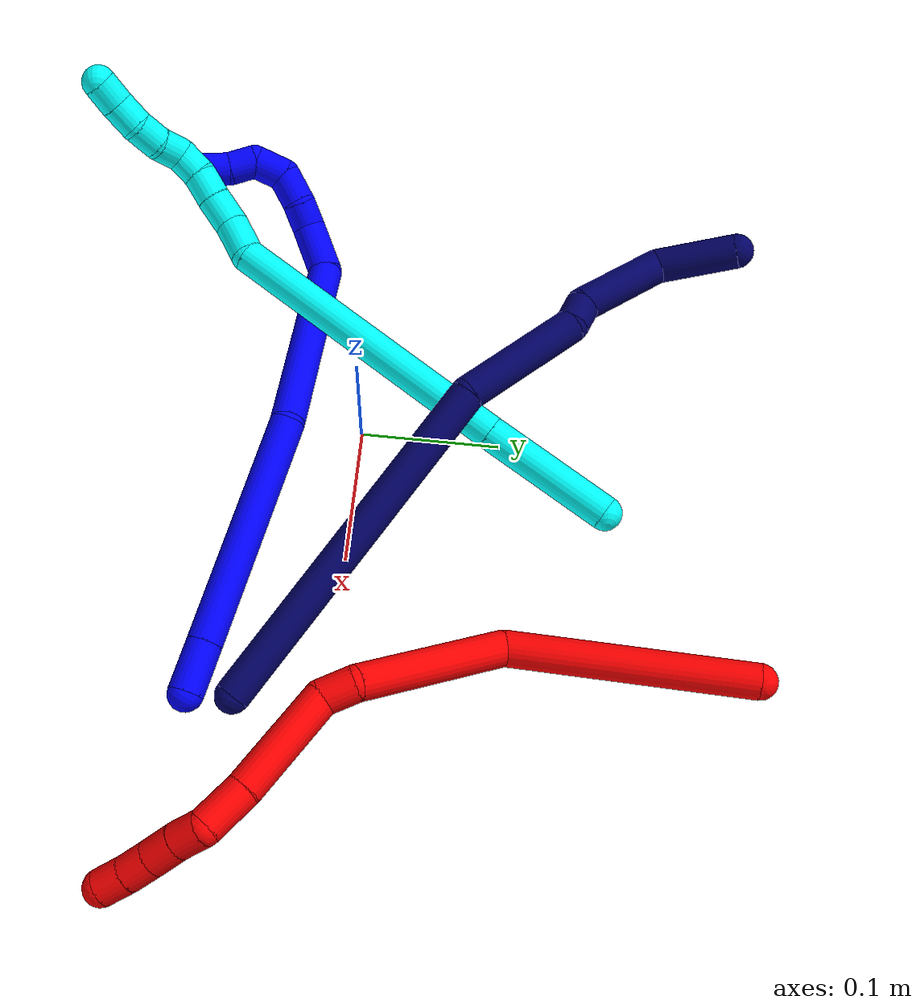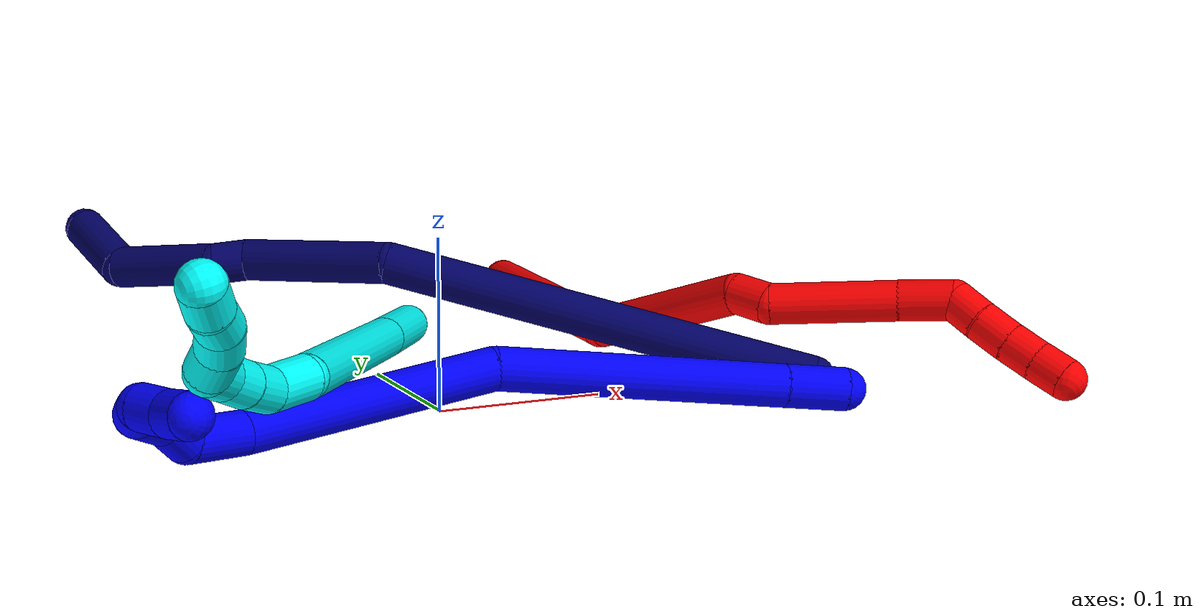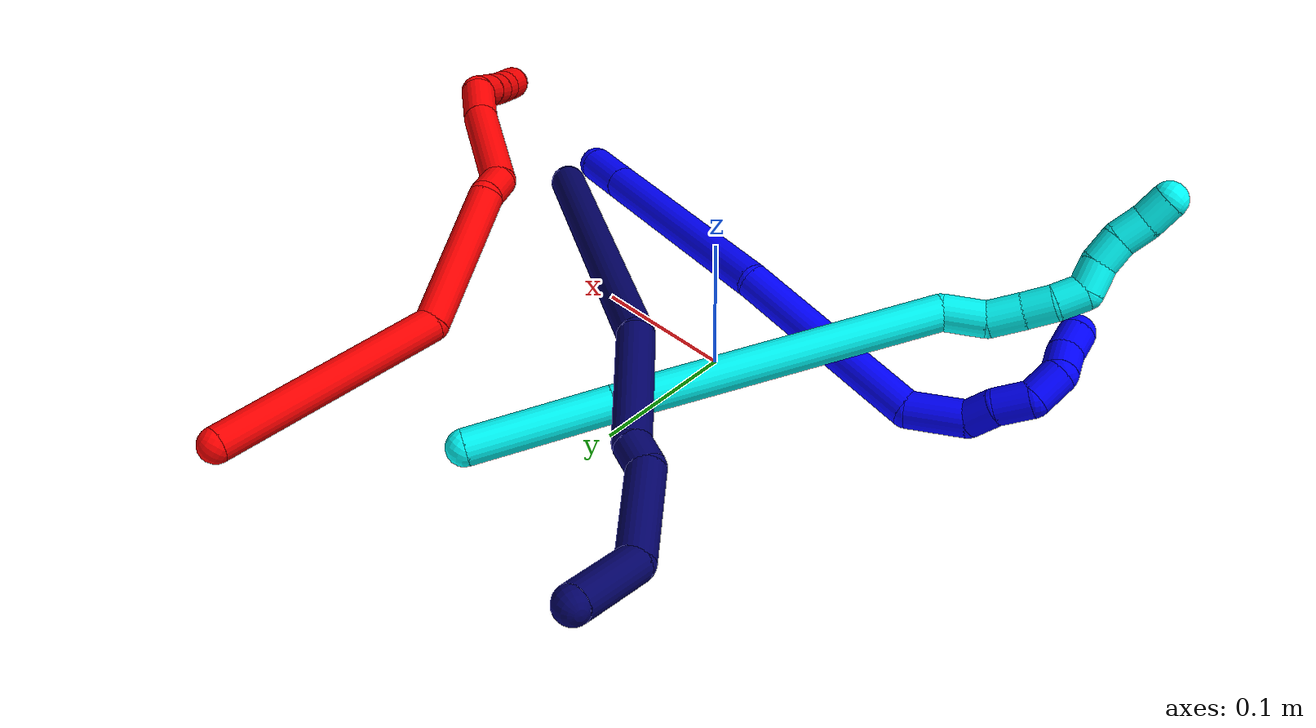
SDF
<sdf version="1.7">
 <world name="default">
  <model name="1">
   <static>0</static>
   <link name="1">
    <collision name="collision-cylinder-e_1_1_4">
     <pose>-0.013144 0.011251 0.005293 -1.13108 -0.813152 0.533527</pose>
     <geometry><cylinder><radius>0.0125</radius><length>0.036186</length></cylinder></geometry>
     <surface>
      <friction><ode><mu>1.16</mu><mu2>1.16</mu2><slip1>0</slip1><slip2>0</slip2></ode></friction>
      <contact><ode><kp>1e+06</kp><kd>1</kd><max_vel>0</max_vel><min_depth>0.001</min_depth></ode></contact>
     </surface>
    </collision>
    <visual name="visual-cylinder-e_1_1_4">
     <pose>-0.013144 0.011251 0.005293 -1.13108 -0.813152 0.533527</pose>
     <geometry><cylinder><radius>0.0125</radius><length>0.036186</length></cylinder></geometry>
     <material><ambient>0 0 1 1</ambient></material>
    </visual>
    <collision name="collision-cylinder-e_2_4_5">
     <pose>-0.087219 0.074933 0.035404 -1.1287 -0.809971 0.529972</pose>
     <geometry><cylinder><radius>0.0125</radius><length>0.168258</length></cylinder></geometry>
     <surface>
      <friction><ode><mu>1.16</mu><mu2>1.16</mu2><slip1>0</slip1><slip2>0</slip2></ode></friction>
      <contact><ode><kp>1e+06</kp><kd>1</kd><max_vel>0</max_vel><min_depth>0.001</min_depth></ode></contact>
     </surface>
    </collision>
    <visual name="visual-cylinder-e_2_4_5">
     <pose>-0.087219 0.074933 0.035404 -1.1287 -0.809971 0.529972</pose>
     <geometry><cylinder><radius>0.0125</radius><length>0.168258</length></cylinder></geometry>
     <material><ambient>0 0 1 1</ambient></material>
    </visual>
    <collision name="collision-cylinder-e_3_5_6">
     <pose>-0.20806 0.153716 0.091462 -0.700718 -0.972113 0.38145</pose>
     <geometry><cylinder><radius>0.0125</radius><length>0.145044</length></cylinder></geometry>
     <surface>
      <friction><ode><mu>1.16</mu><mu2>1.16</mu2><slip1>0</slip1><slip2>0</slip2></ode></friction>
      <contact><ode><kp>1e+06</kp><kd>1</kd><max_vel>0</max_vel><min_depth>0.001</min_depth></ode></contact>
     </surface>
    </collision>
    <visual name="visual-cylinder-e_3_5_6">
     <pose>-0.20806 0.153716 0.091462 -0.700718 -0.972113 0.38145</pose>
     <geometry><cylinder><radius>0.0125</radius><length>0.145044</length></cylinder></geometry>
     <material><ambient>0 0 1 1</ambient></material>
    </visual>
    <collision name="collision-cylinder-e_4_6_7">
     <pose>-0.276936 0.187653 0.139155 -0.431986 -0.459621 0.102572</pose>
     <geometry><cylinder><radius>0.0125</radius><length>0.040429</length></cylinder></geometry>
     <surface>
      <friction><ode><mu>1.16</mu><mu2>1.16</mu2><slip1>0</slip1><slip2>0</slip2></ode></friction>
      <contact><ode><kp>1e+06</kp><kd>1</kd><max_vel>0</max_vel><min_depth>0.001</min_depth></ode></contact>
     </surface>
    </collision>
    <visual name="visual-cylinder-e_4_6_7">
     <pose>-0.276936 0.187653 0.139155 -0.431986 -0.459621 0.102572</pose>
     <geometry><cylinder><radius>0.0125</radius><length>0.040429</length></cylinder></geometry>
     <material><ambient>0 0 1 1</ambient></material>
    </visual>
    <collision name="collision-cylinder-e_5_7_8">
     <pose>-0.285285 0.20265 0.163021 -0.785259 0.05891 -0.024402</pose>
     <geometry><cylinder><radius>0.0125</radius><length>0.021004</length></cylinder></geometry>
     <surface>
      <friction><ode><mu>1.16</mu><mu2>1.16</mu2><slip1>0</slip1><slip2>0</slip2></ode></friction>
      <contact><ode><kp>1e+06</kp><kd>1</kd><max_vel>0</max_vel><min_depth>0.001</min_depth></ode></contact>
     </surface>
    </collision>
    <visual name="visual-cylinder-e_5_7_8">
     <pose>-0.285285 0.20265 0.163021 -0.785259 0.05891 -0.024402</pose>
     <geometry><cylinder><radius>0.0125</radius><length>0.021004</length></cylinder></geometry>
     <material><ambient>0 0 1 1</ambient></material>
    </visual>
    <collision name="collision-cylinder-e_6_8_9">
     <pose>-0.285998 0.216244 0.180798 -0.537909 -0.109874 0.030313</pose>
     <geometry><cylinder><radius>0.0125</radius><length>0.024278</length></cylinder></geometry>
     <surface>
      <friction><ode><mu>1.16</mu><mu2>1.16</mu2><slip1>0</slip1><slip2>0</slip2></ode></friction>
      <contact><ode><kp>1e+06</kp><kd>1</kd><max_vel>0</max_vel><min_depth>0.001</min_depth></ode></contact>
     </surface>
    </collision>
    <visual name="visual-cylinder-e_6_8_9">
     <pose>-0.285998 0.216244 0.180798 -0.537909 -0.109874 0.030313</pose>
     <geometry><cylinder><radius>0.0125</radius><length>0.024278</length></cylinder></geometry>
     <material><ambient>0 0 1 1</ambient></material>
    </visual>
    <collision name="collision-cylinder-e_7_9_10">
     <pose>-0.281767 0.223752 0.201804 -0.123959 0.478326 -0.030261</pose>
     <geometry><cylinder><radius>0.0125</radius><length>0.024166</length></cylinder></geometry>
     <surface>
      <friction><ode><mu>1.16</mu><mu2>1.16</mu2><slip1>0</slip1><slip2>0</slip2></ode></friction>
      <contact><ode><kp>1e+06</kp><kd>1</kd><max_vel>0</max_vel><min_depth>0.001</min_depth></ode></contact>
     </surface>
    </collision>
    <visual name="visual-cylinder-e_7_9_10">
     <pose>-0.281767 0.223752 0.201804 -0.123959 0.478326 -0.030261</pose>
     <geometry><cylinder><radius>0.0125</radius><length>0.024166</length></cylinder></geometry>
     <material><ambient>0 0 1 1</ambient></material>
    </visual>
    <collision name="collision-cylinder-e_8_10_11">
     <pose>-0.269431 0.220082 0.218381 0.70009 0.717921 0.272273</pose>
     <geometry><cylinder><radius>0.0125</radius><length>0.020595</length></cylinder></geometry>
     <surface>
      <friction><ode><mu>1.16</mu><mu2>1.16</mu2><slip1>0</slip1><slip2>0</slip2></ode></friction>
      <contact><ode><kp>1e+06</kp><kd>1</kd><max_vel>0</max_vel><min_depth>0.001</min_depth></ode></contact>
     </surface>
    </collision>
    <visual name="visual-cylinder-e_8_10_11">
     <pose>-0.269431 0.220082 0.218381 0.70009 0.717921 0.272273</pose>
     <geometry><cylinder><radius>0.0125</radius><length>0.020595</length></cylinder></geometry>
     <material><ambient>0 0 1 1</ambient></material>
    </visual>
    <collision name="collision-cylinder-e_9_11_2">
     <pose>-0.256459 0.212187 0.231632 0.37698 0.666997 0.131978</pose>
     <geometry><cylinder><radius>0.0125</radius><length>0.02004</length></cylinder></geometry>
     <surface>
      <friction><ode><mu>1.16</mu><mu2>1.16</mu2><slip1>0</slip1><slip2>0</slip2></ode></friction>
      <contact><ode><kp>1e+06</kp><kd>1</kd><max_vel>0</max_vel><min_depth>0.001</min_depth></ode></contact>
     </surface>
    </collision>
    <visual name="visual-cylinder-e_9_11_2">
     <pose>-0.256459 0.212187 0.231632 0.37698 0.666997 0.131978</pose>
     <geometry><cylinder><radius>0.0125</radius><length>0.02004</length></cylinder></geometry>
     <material><ambient>0 0 1 1</ambient></material>
    </visual>
    <collision name="collision-sphere-2">
     <pose>-0.25026 0.209289 0.238951 0 -0 0</pose>
     <geometry><sphere><radius>0.0125</radius></sphere></geometry>
     <surface>
      <friction><ode><mu>1.16</mu><mu2>1.16</mu2><slip1>0</slip1><slip2>0</slip2></ode></friction>
      <contact><ode><kp>1e+06</kp><kd>1</kd><max_vel>0</max_vel><min_depth>0.001</min_depth></ode></contact>
     </surface>
    </collision>
    <visual name="visual-sphere-2">
     <pose>-0.25026 0.209289 0.238951 0 -0 0</pose>
     <geometry><sphere><radius>0.0125</radius></sphere></geometry>
     <material><ambient>0 0 1 1</ambient></material>
    </visual>
    <collision name="collision-sphere-11">
     <pose>-0.262657 0.215085 0.224312 0 -0 0</pose>
     <geometry><sphere><radius>0.0125</radius></sphere></geometry>
     <surface>
      <friction><ode><mu>1.16</mu><mu2>1.16</mu2><slip1>0</slip1><slip2>0</slip2></ode></friction>
      <contact><ode><kp>1e+06</kp><kd>1</kd><max_vel>0</max_vel><min_depth>0.001</min_depth></ode></contact>
     </surface>
    </collision>
    <visual name="visual-sphere-11">
     <pose>-0.262657 0.215085 0.224312 0 -0 0</pose>
     <geometry><sphere><radius>0.0125</radius></sphere></geometry>
     <material><ambient>0 0 1 1</ambient></material>
    </visual>
    <collision name="collision-sphere-10">
     <pose>-0.276205 0.225079 0.212449 0 -0 0</pose>
     <geometry><sphere><radius>0.0125</radius></sphere></geometry>
     <surface>
      <friction><ode><mu>1.16</mu><mu2>1.16</mu2><slip1>0</slip1><slip2>0</slip2></ode></friction>
      <contact><ode><kp>1e+06</kp><kd>1</kd><max_vel>0</max_vel><min_depth>0.001</min_depth></ode></contact>
     </surface>
    </collision>
    <visual name="visual-sphere-10">
     <pose>-0.276205 0.225079 0.212449 0 -0 0</pose>
     <geometry><sphere><radius>0.0125</radius></sphere></geometry>
     <material><ambient>0 0 1 1</ambient></material>
    </visual>
    <collision name="collision-sphere-9">
     <pose>-0.287329 0.222426 0.19116 0 -0 0</pose>
     <geometry><sphere><radius>0.0125</radius></sphere></geometry>
     <surface>
      <friction><ode><mu>1.16</mu><mu2>1.16</mu2><slip1>0</slip1><slip2>0</slip2></ode></friction>
      <contact><ode><kp>1e+06</kp><kd>1</kd><max_vel>0</max_vel><min_depth>0.001</min_depth></ode></contact>
     </surface>
    </collision>
    <visual name="visual-sphere-9">
     <pose>-0.287329 0.222426 0.19116 0 -0 0</pose>
     <geometry><sphere><radius>0.0125</radius></sphere></geometry>
     <material><ambient>0 0 1 1</ambient></material>
    </visual>
    <collision name="collision-sphere-4">
     <pose>-0.026287 0.022502 0.010586 0 -0 0</pose>
     <geometry><sphere><radius>0.0125</radius></sphere></geometry>
     <surface>
      <friction><ode><mu>1.16</mu><mu2>1.16</mu2><slip1>0</slip1><slip2>0</slip2></ode></friction>
      <contact><ode><kp>1e+06</kp><kd>1</kd><max_vel>0</max_vel><min_depth>0.001</min_depth></ode></contact>
     </surface>
    </collision>
    <visual name="visual-sphere-4">
     <pose>-0.026287 0.022502 0.010586 0 -0 0</pose>
     <geometry><sphere><radius>0.0125</radius></sphere></geometry>
     <material><ambient>0 0 1 1</ambient></material>
    </visual>
    <collision name="collision-sphere-1">
     <geometry><sphere><radius>0.0125</radius></sphere></geometry>
     <surface>
      <friction><ode><mu>1.16</mu><mu2>1.16</mu2><slip1>0</slip1><slip2>0</slip2></ode></friction>
      <contact><ode><kp>1e+06</kp><kd>1</kd><max_vel>0</max_vel><min_depth>0.001</min_depth></ode></contact>
     </surface>
    </collision>
    <visual name="visual-sphere-1">
     <geometry><sphere><radius>0.0125</radius></sphere></geometry>
     <material><ambient>0 0 1 1</ambient></material>
    </visual>
    <collision name="collision-sphere-8">
     <pose>-0.284667 0.210062 0.170436 0 -0 0</pose>
     <geometry><sphere><radius>0.0125</radius></sphere></geometry>
     <surface>
      <friction><ode><mu>1.16</mu><mu2>1.16</mu2><slip1>0</slip1><slip2>0</slip2></ode></friction>
      <contact><ode><kp>1e+06</kp><kd>1</kd><max_vel>0</max_vel><min_depth>0.001</min_depth></ode></contact>
     </surface>
    </collision>
    <visual name="visual-sphere-8">
     <pose>-0.284667 0.210062 0.170436 0 -0 0</pose>
     <geometry><sphere><radius>0.0125</radius></sphere></geometry>
     <material><ambient>0 0 1 1</ambient></material>
    </visual>
    <collision name="collision-sphere-5">
     <pose>-0.148151 0.127364 0.060222 0 -0 0</pose>
     <geometry><sphere><radius>0.0125</radius></sphere></geometry>
     <surface>
      <friction><ode><mu>1.16</mu><mu2>1.16</mu2><slip1>0</slip1><slip2>0</slip2></ode></friction>
      <contact><ode><kp>1e+06</kp><kd>1</kd><max_vel>0</max_vel><min_depth>0.001</min_depth></ode></contact>
     </surface>
    </collision>
    <visual name="visual-sphere-5">
     <pose>-0.148151 0.127364 0.060222 0 -0 0</pose>
     <geometry><sphere><radius>0.0125</radius></sphere></geometry>
     <material><ambient>0 0 1 1</ambient></material>
    </visual>
    <collision name="collision-sphere-6">
     <pose>-0.267969 0.180068 0.122702 0 -0 0</pose>
     <geometry><sphere><radius>0.0125</radius></sphere></geometry>
     <surface>
      <friction><ode><mu>1.16</mu><mu2>1.16</mu2><slip1>0</slip1><slip2>0</slip2></ode></friction>
      <contact><ode><kp>1e+06</kp><kd>1</kd><max_vel>0</max_vel><min_depth>0.001</min_depth></ode></contact>
     </surface>
    </collision>
    <visual name="visual-sphere-6">
     <pose>-0.267969 0.180068 0.122702 0 -0 0</pose>
     <geometry><sphere><radius>0.0125</radius></sphere></geometry>
     <material><ambient>0 0 1 1</ambient></material>
    </visual>
    <collision name="collision-sphere-7">
     <pose>-0.285903 0.195238 0.155607 0 -0 0</pose>
     <geometry><sphere><radius>0.0125</radius></sphere></geometry>
     <surface>
      <friction><ode><mu>1.16</mu><mu2>1.16</mu2><slip1>0</slip1><slip2>0</slip2></ode></friction>
      <contact><ode><kp>1e+06</kp><kd>1</kd><max_vel>0</max_vel><min_depth>0.001</min_depth></ode></contact>
     </surface>
    </collision>
    <visual name="visual-sphere-7">
     <pose>-0.285903 0.195238 0.155607 0 -0 0</pose>
     <geometry><sphere><radius>0.0125</radius></sphere></geometry>
     <material><ambient>0 0 1 1</ambient></material>
    </visual>
    <inertial>
     <pose>-0.173917 0.133192 0.09374 0 -0 0</pose>
     <mass>0.5</mass>
     <inertia>
      <ixx>0.000572</ixx>
      <ixy>0</ixy>
      <ixz>0</ixz>
      <iyy>0.000751</iyy>
      <iyz>0</iyz>
      <izz>0.000177</izz>
     </inertia>
    </inertial>
   </link>
   <pose>0.21127 -0.093215 0.011952 1.5324 -0.604914 -0.48804</pose>
  </model>
  <model name="2">
   <static>0</static>
   <link name="2">
    <collision name="collision-cylinder-e_1_1_4">
     <pose>0.039979 -0.060343 0.046857 0.910542 0.482103 0.239553</pose>
     <geometry><cylinder><radius>0.0125</radius><length>0.172456</length></cylinder></geometry>
     <surface>
      <friction><ode><mu>1.16</mu><mu2>1.16</mu2><slip1>0</slip1><slip2>0</slip2></ode></friction>
      <contact><ode><kp>1e+06</kp><kd>1</kd><max_vel>0</max_vel><min_depth>0.001</min_depth></ode></contact>
     </surface>
    </collision>
    <visual name="visual-cylinder-e_1_1_4">
     <pose>0.039979 -0.060343 0.046857 0.910542 0.482103 0.239553</pose>
     <geometry><cylinder><radius>0.0125</radius><length>0.172456</length></cylinder></geometry>
     <material><ambient>1 0 0 1</ambient></material>
    </visual>
    <collision name="collision-cylinder-e_2_4_5">
     <pose>0.10589 -0.169115 0.093099 1.58351 0.491579 0.497615</pose>
     <geometry><cylinder><radius>0.0125</radius><length>0.109874</length></cylinder></geometry>
     <surface>
      <friction><ode><mu>1.16</mu><mu2>1.16</mu2><slip1>0</slip1><slip2>0</slip2></ode></friction>
      <contact><ode><kp>1e+06</kp><kd>1</kd><max_vel>0</max_vel><min_depth>0.001</min_depth></ode></contact>
     </surface>
    </collision>
    <visual name="visual-cylinder-e_2_4_5">
     <pose>0.10589 -0.169115 0.093099 1.58351 0.491579 0.497615</pose>
     <geometry><cylinder><radius>0.0125</radius><length>0.109874</length></cylinder></geometry>
     <material><ambient>1 0 0 1</ambient></material>
    </visual>
    <collision name="collision-cylinder-e_3_5_6">
     <pose>0.133125 -0.229191 0.095777 1.29524 0.107357 0.081245</pose>
     <geometry><cylinder><radius>0.0125</radius><length>0.024349</length></cylinder></geometry>
     <surface>
      <friction><ode><mu>1.16</mu><mu2>1.16</mu2><slip1>0</slip1><slip2>0</slip2></ode></friction>
      <contact><ode><kp>1e+06</kp><kd>1</kd><max_vel>0</max_vel><min_depth>0.001</min_depth></ode></contact>
     </surface>
    </collision>
    <visual name="visual-cylinder-e_3_5_6">
     <pose>0.133125 -0.229191 0.095777 1.29524 0.107357 0.081245</pose>
     <geometry><cylinder><radius>0.0125</radius><length>0.024349</length></cylinder></geometry>
     <material><ambient>1 0 0 1</ambient></material>
    </visual>
    <collision name="collision-cylinder-e_4_6_7">
     <pose>0.131977 -0.277741 0.088525 1.84913 -0.063822 -0.084593</pose>
     <geometry><cylinder><radius>0.0125</radius><length>0.076915</length></cylinder></geometry>
     <surface>
      <friction><ode><mu>1.16</mu><mu2>1.16</mu2><slip1>0</slip1><slip2>0</slip2></ode></friction>
      <contact><ode><kp>1e+06</kp><kd>1</kd><max_vel>0</max_vel><min_depth>0.001</min_depth></ode></contact>
     </surface>
    </collision>
    <visual name="visual-cylinder-e_4_6_7">
     <pose>0.131977 -0.277741 0.088525 1.84913 -0.063822 -0.084593</pose>
     <geometry><cylinder><radius>0.0125</radius><length>0.076915</length></cylinder></geometry>
     <material><ambient>1 0 0 1</ambient></material>
    </visual>
    <collision name="collision-cylinder-e_5_7_8">
     <pose>0.129608 -0.330992 0.074739 1.76649 0.005037 0.006133</pose>
     <geometry><cylinder><radius>0.0125</radius><length>0.033335</length></cylinder></geometry>
     <surface>
      <friction><ode><mu>1.16</mu><mu2>1.16</mu2><slip1>0</slip1><slip2>0</slip2></ode></friction>
      <contact><ode><kp>1e+06</kp><kd>1</kd><max_vel>0</max_vel><min_depth>0.001</min_depth></ode></contact>
     </surface>
    </collision>
    <visual name="visual-cylinder-e_5_7_8">
     <pose>0.129608 -0.330992 0.074739 1.76649 0.005037 0.006133</pose>
     <geometry><cylinder><radius>0.0125</radius><length>0.033335</length></cylinder></geometry>
     <material><ambient>1 0 0 1</ambient></material>
    </visual>
    <collision name="collision-cylinder-e_6_8_9">
     <pose>0.127805 -0.356384 0.076484 1.06687 -0.180799 -0.106959</pose>
     <geometry><cylinder><radius>0.0125</radius><length>0.020994</length></cylinder></geometry>
     <surface>
      <friction><ode><mu>1.16</mu><mu2>1.16</mu2><slip1>0</slip1><slip2>0</slip2></ode></friction>
      <contact><ode><kp>1e+06</kp><kd>1</kd><max_vel>0</max_vel><min_depth>0.001</min_depth></ode></contact>
     </surface>
    </collision>
    <visual name="visual-cylinder-e_6_8_9">
     <pose>0.127805 -0.356384 0.076484 1.06687 -0.180799 -0.106959</pose>
     <geometry><cylinder><radius>0.0125</radius><length>0.020994</length></cylinder></geometry>
     <material><ambient>1 0 0 1</ambient></material>
    </visual>
    <collision name="collision-cylinder-e_7_9_10">
     <pose>0.123275 -0.374948 0.085813 1.14289 -0.247329 -0.159511</pose>
     <geometry><cylinder><radius>0.0125</radius><length>0.021588</length></cylinder></geometry>
     <surface>
      <friction><ode><mu>1.16</mu><mu2>1.16</mu2><slip1>0</slip1><slip2>0</slip2></ode></friction>
      <contact><ode><kp>1e+06</kp><kd>1</kd><max_vel>0</max_vel><min_depth>0.001</min_depth></ode></contact>
     </surface>
    </collision>
    <visual name="visual-cylinder-e_7_9_10">
     <pose>0.123275 -0.374948 0.085813 1.14289 -0.247329 -0.159511</pose>
     <geometry><cylinder><radius>0.0125</radius><length>0.021588</length></cylinder></geometry>
     <material><ambient>1 0 0 1</ambient></material>
    </visual>
    <collision name="collision-cylinder-e_8_10_11">
     <pose>0.118577 -0.393612 0.094033 1.1697 -0.204062 -0.135379</pose>
     <geometry><cylinder><radius>0.0125</radius><length>0.020281</length></cylinder></geometry>
     <surface>
      <friction><ode><mu>1.16</mu><mu2>1.16</mu2><slip1>0</slip1><slip2>0</slip2></ode></friction>
      <contact><ode><kp>1e+06</kp><kd>1</kd><max_vel>0</max_vel><min_depth>0.001</min_depth></ode></contact>
     </surface>
    </collision>
    <visual name="visual-cylinder-e_8_10_11">
     <pose>0.118577 -0.393612 0.094033 1.1697 -0.204062 -0.135379</pose>
     <geometry><cylinder><radius>0.0125</radius><length>0.020281</length></cylinder></geometry>
     <material><ambient>1 0 0 1</ambient></material>
    </visual>
    <collision name="collision-cylinder-e_9_11_2">
     <pose>0.115275 -0.411909 0.101998 1.1508 -0.123726 -0.08031</pose>
     <geometry><cylinder><radius>0.0125</radius><length>0.020207</length></cylinder></geometry>
     <surface>
      <friction><ode><mu>1.16</mu><mu2>1.16</mu2><slip1>0</slip1><slip2>0</slip2></ode></friction>
      <contact><ode><kp>1e+06</kp><kd>1</kd><max_vel>0</max_vel><min_depth>0.001</min_depth></ode></contact>
     </surface>
    </collision>
    <visual name="visual-cylinder-e_9_11_2">
     <pose>0.115275 -0.411909 0.101998 1.1508 -0.123726 -0.08031</pose>
     <geometry><cylinder><radius>0.0125</radius><length>0.020207</length></cylinder></geometry>
     <material><ambient>1 0 0 1</ambient></material>
    </visual>
    <collision name="collision-sphere-2">
     <pose>0.114028 -0.421064 0.106086 0 -0 0</pose>
     <geometry><sphere><radius>0.0125</radius></sphere></geometry>
     <surface>
      <friction><ode><mu>1.16</mu><mu2>1.16</mu2><slip1>0</slip1><slip2>0</slip2></ode></friction>
      <contact><ode><kp>1e+06</kp><kd>1</kd><max_vel>0</max_vel><min_depth>0.001</min_depth></ode></contact>
     </surface>
    </collision>
    <visual name="visual-sphere-2">
     <pose>0.114028 -0.421064 0.106086 0 -0 0</pose>
     <geometry><sphere><radius>0.0125</radius></sphere></geometry>
     <material><ambient>1 0 0 1</ambient></material>
    </visual>
    <collision name="collision-sphere-11">
     <pose>0.116522 -0.402754 0.09791 0 -0 0</pose>
     <geometry><sphere><radius>0.0125</radius></sphere></geometry>
     <surface>
      <friction><ode><mu>1.16</mu><mu2>1.16</mu2><slip1>0</slip1><slip2>0</slip2></ode></friction>
      <contact><ode><kp>1e+06</kp><kd>1</kd><max_vel>0</max_vel><min_depth>0.001</min_depth></ode></contact>
     </surface>
    </collision>
    <visual name="visual-sphere-11">
     <pose>0.116522 -0.402754 0.09791 0 -0 0</pose>
     <geometry><sphere><radius>0.0125</radius></sphere></geometry>
     <material><ambient>1 0 0 1</ambient></material>
    </visual>
    <collision name="collision-sphere-10">
     <pose>0.120632 -0.38447 0.090156 0 -0 0</pose>
     <geometry><sphere><radius>0.0125</radius></sphere></geometry>
     <surface>
      <friction><ode><mu>1.16</mu><mu2>1.16</mu2><slip1>0</slip1><slip2>0</slip2></ode></friction>
      <contact><ode><kp>1e+06</kp><kd>1</kd><max_vel>0</max_vel><min_depth>0.001</min_depth></ode></contact>
     </surface>
    </collision>
    <visual name="visual-sphere-10">
     <pose>0.120632 -0.38447 0.090156 0 -0 0</pose>
     <geometry><sphere><radius>0.0125</radius></sphere></geometry>
     <material><ambient>1 0 0 1</ambient></material>
    </visual>
    <collision name="collision-sphere-9">
     <pose>0.125917 -0.365426 0.08147 0 -0 0</pose>
     <geometry><sphere><radius>0.0125</radius></sphere></geometry>
     <surface>
      <friction><ode><mu>1.16</mu><mu2>1.16</mu2><slip1>0</slip1><slip2>0</slip2></ode></friction>
      <contact><ode><kp>1e+06</kp><kd>1</kd><max_vel>0</max_vel><min_depth>0.001</min_depth></ode></contact>
     </surface>
    </collision>
    <visual name="visual-sphere-9">
     <pose>0.125917 -0.365426 0.08147 0 -0 0</pose>
     <geometry><sphere><radius>0.0125</radius></sphere></geometry>
     <material><ambient>1 0 0 1</ambient></material>
    </visual>
    <collision name="collision-sphere-4">
     <pose>0.079958 -0.120687 0.093715 0 -0 0</pose>
     <geometry><sphere><radius>0.0125</radius></sphere></geometry>
     <surface>
      <friction><ode><mu>1.16</mu><mu2>1.16</mu2><slip1>0</slip1><slip2>0</slip2></ode></friction>
      <contact><ode><kp>1e+06</kp><kd>1</kd><max_vel>0</max_vel><min_depth>0.001</min_depth></ode></contact>
     </surface>
    </collision>
    <visual name="visual-sphere-4">
     <pose>0.079958 -0.120687 0.093715 0 -0 0</pose>
     <geometry><sphere><radius>0.0125</radius></sphere></geometry>
     <material><ambient>1 0 0 1</ambient></material>
    </visual>
    <collision name="collision-sphere-1">
     <geometry><sphere><radius>0.0125</radius></sphere></geometry>
     <surface>
      <friction><ode><mu>1.16</mu><mu2>1.16</mu2><slip1>0</slip1><slip2>0</slip2></ode></friction>
      <contact><ode><kp>1e+06</kp><kd>1</kd><max_vel>0</max_vel><min_depth>0.001</min_depth></ode></contact>
     </surface>
    </collision>
    <visual name="visual-sphere-1">
     <geometry><sphere><radius>0.0125</radius></sphere></geometry>
     <material><ambient>1 0 0 1</ambient></material>
    </visual>
    <collision name="collision-sphere-8">
     <pose>0.129692 -0.347341 0.071498 0 -0 0</pose>
     <geometry><sphere><radius>0.0125</radius></sphere></geometry>
     <surface>
      <friction><ode><mu>1.16</mu><mu2>1.16</mu2><slip1>0</slip1><slip2>0</slip2></ode></friction>
      <contact><ode><kp>1e+06</kp><kd>1</kd><max_vel>0</max_vel><min_depth>0.001</min_depth></ode></contact>
     </surface>
    </collision>
    <visual name="visual-sphere-8">
     <pose>0.129692 -0.347341 0.071498 0 -0 0</pose>
     <geometry><sphere><radius>0.0125</radius></sphere></geometry>
     <material><ambient>1 0 0 1</ambient></material>
    </visual>
    <collision name="collision-sphere-5">
     <pose>0.131821 -0.217543 0.092483 0 -0 0</pose>
     <geometry><sphere><radius>0.0125</radius></sphere></geometry>
     <surface>
      <friction><ode><mu>1.16</mu><mu2>1.16</mu2><slip1>0</slip1><slip2>0</slip2></ode></friction>
      <contact><ode><kp>1e+06</kp><kd>1</kd><max_vel>0</max_vel><min_depth>0.001</min_depth></ode></contact>
     </surface>
    </collision>
    <visual name="visual-sphere-5">
     <pose>0.131821 -0.217543 0.092483 0 -0 0</pose>
     <geometry><sphere><radius>0.0125</radius></sphere></geometry>
     <material><ambient>1 0 0 1</ambient></material>
    </visual>
    <collision name="collision-sphere-6">
     <pose>0.13443 -0.240839 0.09907 0 -0 0</pose>
     <geometry><sphere><radius>0.0125</radius></sphere></geometry>
     <surface>
      <friction><ode><mu>1.16</mu><mu2>1.16</mu2><slip1>0</slip1><slip2>0</slip2></ode></friction>
      <contact><ode><kp>1e+06</kp><kd>1</kd><max_vel>0</max_vel><min_depth>0.001</min_depth></ode></contact>
     </surface>
    </collision>
    <visual name="visual-sphere-6">
     <pose>0.13443 -0.240839 0.09907 0 -0 0</pose>
     <geometry><sphere><radius>0.0125</radius></sphere></geometry>
     <material><ambient>1 0 0 1</ambient></material>
    </visual>
    <collision name="collision-sphere-7">
     <pose>0.129524 -0.314643 0.07798 0 -0 0</pose>
     <geometry><sphere><radius>0.0125</radius></sphere></geometry>
     <surface>
      <friction><ode><mu>1.16</mu><mu2>1.16</mu2><slip1>0</slip1><slip2>0</slip2></ode></friction>
      <contact><ode><kp>1e+06</kp><kd>1</kd><max_vel>0</max_vel><min_depth>0.001</min_depth></ode></contact>
     </surface>
    </collision>
    <visual name="visual-sphere-7">
     <pose>0.129524 -0.314643 0.07798 0 -0 0</pose>
     <geometry><sphere><radius>0.0125</radius></sphere></geometry>
     <material><ambient>1 0 0 1</ambient></material>
    </visual>
    <inertial>
     <pose>0.092642 -0.197695 0.074738 0 -0 0</pose>
     <mass>0.5</mass>
     <inertia>
      <ixx>0.00066</ixx>
      <ixy>0</ixy>
      <ixz>0</ixz>
      <iyy>0.000415</iyy>
      <iyz>0</iyz>
      <izz>0.000213</izz>
     </inertia>
    </inertial>
   </link>
   <pose>0.165041 0.287859 0.013602 3.03199 -0.914518 -2.30038</pose>
  </model>
  <model name="3">
   <static>0</static>
   <link name="3">
    <collision name="collision-cylinder-e_1_1_4">
     <pose>-0.019829 -0.036331 -0.027068 2.21111 -0.412548 -0.789871</pose>
     <geometry><cylinder><radius>0.0125</radius><length>0.098909</length></cylinder></geometry>
     <surface>
      <friction><ode><mu>1.16</mu><mu2>1.16</mu2><slip1>0</slip1><slip2>0</slip2></ode></friction>
      <contact><ode><kp>1e+06</kp><kd>1</kd><max_vel>0</max_vel><min_depth>0.001</min_depth></ode></contact>
     </surface>
    </collision>
    <visual name="visual-cylinder-e_1_1_4">
     <pose>-0.019829 -0.036331 -0.027068 2.21111 -0.412548 -0.789871</pose>
     <geometry><cylinder><radius>0.0125</radius><length>0.098909</length></cylinder></geometry>
     <material><ambient>0.003922 1 0.996078 1</ambient></material>
    </visual>
    <collision name="collision-cylinder-e_2_4_5">
     <pose>-0.084694 -0.153521 -0.117193 2.23313 -0.413845 -0.81208</pose>
     <geometry><cylinder><radius>0.0125</radius><length>0.223989</length></cylinder></geometry>
     <surface>
      <friction><ode><mu>1.16</mu><mu2>1.16</mu2><slip1>0</slip1><slip2>0</slip2></ode></friction>
      <contact><ode><kp>1e+06</kp><kd>1</kd><max_vel>0</max_vel><min_depth>0.001</min_depth></ode></contact>
     </surface>
    </collision>
    <visual name="visual-cylinder-e_2_4_5">
     <pose>-0.084694 -0.153521 -0.117193 2.23313 -0.413845 -0.81208</pose>
     <geometry><cylinder><radius>0.0125</radius><length>0.223989</length></cylinder></geometry>
     <material><ambient>0.003922 1 0.996078 1</ambient></material>
    </visual>
    <collision name="collision-cylinder-e_3_5_6">
     <pose>-0.133497 -0.240022 -0.193642 2.74278 -0.253647 -1.12572</pose>
     <geometry><cylinder><radius>0.0125</radius><length>0.030022</length></cylinder></geometry>
     <surface>
      <friction><ode><mu>1.16</mu><mu2>1.16</mu2><slip1>0</slip1><slip2>0</slip2></ode></friction>
      <contact><ode><kp>1e+06</kp><kd>1</kd><max_vel>0</max_vel><min_depth>0.001</min_depth></ode></contact>
     </surface>
    </collision>
    <visual name="visual-cylinder-e_3_5_6">
     <pose>-0.133497 -0.240022 -0.193642 2.74278 -0.253647 -1.12572</pose>
     <geometry><cylinder><radius>0.0125</radius><length>0.030022</length></cylinder></geometry>
     <material><ambient>0.003922 1 0.996078 1</ambient></material>
    </visual>
    <collision name="collision-cylinder-e_4_6_7">
     <pose>-0.144398 -0.251221 -0.215429 2.557 -0.616419 -1.62711</pose>
     <geometry><cylinder><radius>0.0125</radius><length>0.02468</length></cylinder></geometry>
     <surface>
      <friction><ode><mu>1.16</mu><mu2>1.16</mu2><slip1>0</slip1><slip2>0</slip2></ode></friction>
      <contact><ode><kp>1e+06</kp><kd>1</kd><max_vel>0</max_vel><min_depth>0.001</min_depth></ode></contact>
     </surface>
    </collision>
    <visual name="visual-cylinder-e_4_6_7">
     <pose>-0.144398 -0.251221 -0.215429 2.557 -0.616419 -1.62711</pose>
     <geometry><cylinder><radius>0.0125</radius><length>0.02468</length></cylinder></geometry>
     <material><ambient>0.003922 1 0.996078 1</ambient></material>
    </visual>
    <collision name="collision-cylinder-e_5_7_8">
     <pose>-0.158106 -0.260768 -0.230882 2.62695 -0.681441 -1.86457</pose>
     <geometry><cylinder><radius>0.0125</radius><length>0.020874</length></cylinder></geometry>
     <surface>
      <friction><ode><mu>1.16</mu><mu2>1.16</mu2><slip1>0</slip1><slip2>0</slip2></ode></friction>
      <contact><ode><kp>1e+06</kp><kd>1</kd><max_vel>0</max_vel><min_depth>0.001</min_depth></ode></contact>
     </surface>
    </collision>
    <visual name="visual-cylinder-e_5_7_8">
     <pose>-0.158106 -0.260768 -0.230882 2.62695 -0.681441 -1.86457</pose>
     <geometry><cylinder><radius>0.0125</radius><length>0.020874</length></cylinder></geometry>
     <material><ambient>0.003922 1 0.996078 1</ambient></material>
    </visual>
    <collision name="collision-cylinder-e_6_8_9">
     <pose>-0.170716 -0.270695 -0.243651 2.33689 -0.632182 -1.31049</pose>
     <geometry><cylinder><radius>0.0125</radius><length>0.020425</length></cylinder></geometry>
     <surface>
      <friction><ode><mu>1.16</mu><mu2>1.16</mu2><slip1>0</slip1><slip2>0</slip2></ode></friction>
      <contact><ode><kp>1e+06</kp><kd>1</kd><max_vel>0</max_vel><min_depth>0.001</min_depth></ode></contact>
     </surface>
    </collision>
    <visual name="visual-cylinder-e_6_8_9">
     <pose>-0.170716 -0.270695 -0.243651 2.33689 -0.632182 -1.31049</pose>
     <geometry><cylinder><radius>0.0125</radius><length>0.020425</length></cylinder></geometry>
     <material><ambient>0.003922 1 0.996078 1</ambient></material>
    </visual>
    <collision name="collision-cylinder-e_7_9_10">
     <pose>-0.184909 -0.282444 -0.2478 1.30816 -0.93525 -0.738763</pose>
     <geometry><cylinder><radius>0.0125</radius><length>0.020277</length></cylinder></geometry>
     <surface>
      <friction><ode><mu>1.16</mu><mu2>1.16</mu2><slip1>0</slip1><slip2>0</slip2></ode></friction>
      <contact><ode><kp>1e+06</kp><kd>1</kd><max_vel>0</max_vel><min_depth>0.001</min_depth></ode></contact>
     </surface>
    </collision>
    <visual name="visual-cylinder-e_7_9_10">
     <pose>-0.184909 -0.282444 -0.2478 1.30816 -0.93525 -0.738763</pose>
     <geometry><cylinder><radius>0.0125</radius><length>0.020277</length></cylinder></geometry>
     <material><ambient>0.003922 1 0.996078 1</ambient></material>
    </visual>
    <collision name="collision-cylinder-e_8_10_11">
     <pose>-0.201533 -0.293576 -0.24735 1.77678 -1.00003 -1.18376</pose>
     <geometry><cylinder><radius>0.0125</radius><length>0.020119</length></cylinder></geometry>
     <surface>
      <friction><ode><mu>1.16</mu><mu2>1.16</mu2><slip1>0</slip1><slip2>0</slip2></ode></friction>
      <contact><ode><kp>1e+06</kp><kd>1</kd><max_vel>0</max_vel><min_depth>0.001</min_depth></ode></contact>
     </surface>
    </collision>
    <visual name="visual-cylinder-e_8_10_11">
     <pose>-0.201533 -0.293576 -0.24735 1.77678 -1.00003 -1.18376</pose>
     <geometry><cylinder><radius>0.0125</radius><length>0.020119</length></cylinder></geometry>
     <material><ambient>0.003922 1 0.996078 1</ambient></material>
    </visual>
    <collision name="collision-cylinder-e_9_11_12">
     <pose>-0.217944 -0.304087 -0.252363 2.21538 -0.885595 -1.5192</pose>
     <geometry><cylinder><radius>0.0125</radius><length>0.020524</length></cylinder></geometry>
     <surface>
      <friction><ode><mu>1.16</mu><mu2>1.16</mu2><slip1>0</slip1><slip2>0</slip2></ode></friction>
      <contact><ode><kp>1e+06</kp><kd>1</kd><max_vel>0</max_vel><min_depth>0.001</min_depth></ode></contact>
     </surface>
    </collision>
    <visual name="visual-cylinder-e_9_11_12">
     <pose>-0.217944 -0.304087 -0.252363 2.21538 -0.885595 -1.5192</pose>
     <geometry><cylinder><radius>0.0125</radius><length>0.020524</length></cylinder></geometry>
     <material><ambient>0.003922 1 0.996078 1</ambient></material>
    </visual>
    <collision name="collision-cylinder-e_10_12_2">
     <pose>-0.234827 -0.313164 -0.258878 2.16273 -1.08814 -1.69776</pose>
     <geometry><cylinder><radius>0.0125</radius><length>0.02018</length></cylinder></geometry>
     <surface>
      <friction><ode><mu>1.16</mu><mu2>1.16</mu2><slip1>0</slip1><slip2>0</slip2></ode></friction>
      <contact><ode><kp>1e+06</kp><kd>1</kd><max_vel>0</max_vel><min_depth>0.001</min_depth></ode></contact>
     </surface>
    </collision>
    <visual name="visual-cylinder-e_10_12_2">
     <pose>-0.234827 -0.313164 -0.258878 2.16273 -1.08814 -1.69776</pose>
     <geometry><cylinder><radius>0.0125</radius><length>0.02018</length></cylinder></geometry>
     <material><ambient>0.003922 1 0.996078 1</ambient></material>
    </visual>
    <collision name="collision-sphere-2">
     <pose>-0.243765 -0.317051 -0.261491 0 -0 0</pose>
     <geometry><sphere><radius>0.0125</radius></sphere></geometry>
     <surface>
      <friction><ode><mu>1.16</mu><mu2>1.16</mu2><slip1>0</slip1><slip2>0</slip2></ode></friction>
      <contact><ode><kp>1e+06</kp><kd>1</kd><max_vel>0</max_vel><min_depth>0.001</min_depth></ode></contact>
     </surface>
    </collision>
    <visual name="visual-sphere-2">
     <pose>-0.243765 -0.317051 -0.261491 0 -0 0</pose>
     <geometry><sphere><radius>0.0125</radius></sphere></geometry>
     <material><ambient>0.003922 1 0.996078 1</ambient></material>
    </visual>
    <collision name="collision-sphere-12">
     <pose>-0.225889 -0.309278 -0.256265 0 -0 0</pose>
     <geometry><sphere><radius>0.0125</radius></sphere></geometry>
     <surface>
      <friction><ode><mu>1.16</mu><mu2>1.16</mu2><slip1>0</slip1><slip2>0</slip2></ode></friction>
      <contact><ode><kp>1e+06</kp><kd>1</kd><max_vel>0</max_vel><min_depth>0.001</min_depth></ode></contact>
     </surface>
    </collision>
    <visual name="visual-sphere-12">
     <pose>-0.225889 -0.309278 -0.256265 0 -0 0</pose>
     <geometry><sphere><radius>0.0125</radius></sphere></geometry>
     <material><ambient>0.003922 1 0.996078 1</ambient></material>
    </visual>
    <collision name="collision-sphere-11">
     <pose>-0.209998 -0.298896 -0.248461 0 -0 0</pose>
     <geometry><sphere><radius>0.0125</radius></sphere></geometry>
     <surface>
      <friction><ode><mu>1.16</mu><mu2>1.16</mu2><slip1>0</slip1><slip2>0</slip2></ode></friction>
      <contact><ode><kp>1e+06</kp><kd>1</kd><max_vel>0</max_vel><min_depth>0.001</min_depth></ode></contact>
     </surface>
    </collision>
    <visual name="visual-sphere-11">
     <pose>-0.209998 -0.298896 -0.248461 0 -0 0</pose>
     <geometry><sphere><radius>0.0125</radius></sphere></geometry>
     <material><ambient>0.003922 1 0.996078 1</ambient></material>
    </visual>
    <collision name="collision-sphere-10">
     <pose>-0.193068 -0.288256 -0.246238 0 -0 0</pose>
     <geometry><sphere><radius>0.0125</radius></sphere></geometry>
     <surface>
      <friction><ode><mu>1.16</mu><mu2>1.16</mu2><slip1>0</slip1><slip2>0</slip2></ode></friction>
      <contact><ode><kp>1e+06</kp><kd>1</kd><max_vel>0</max_vel><min_depth>0.001</min_depth></ode></contact>
     </surface>
    </collision>
    <visual name="visual-sphere-10">
     <pose>-0.193068 -0.288256 -0.246238 0 -0 0</pose>
     <geometry><sphere><radius>0.0125</radius></sphere></geometry>
     <material><ambient>0.003922 1 0.996078 1</ambient></material>
    </visual>
    <collision name="collision-sphere-9">
     <pose>-0.17675 -0.276632 -0.249363 0 -0 0</pose>
     <geometry><sphere><radius>0.0125</radius></sphere></geometry>
     <surface>
      <friction><ode><mu>1.16</mu><mu2>1.16</mu2><slip1>0</slip1><slip2>0</slip2></ode></friction>
      <contact><ode><kp>1e+06</kp><kd>1</kd><max_vel>0</max_vel><min_depth>0.001</min_depth></ode></contact>
     </surface>
    </collision>
    <visual name="visual-sphere-9">
     <pose>-0.17675 -0.276632 -0.249363 0 -0 0</pose>
     <geometry><sphere><radius>0.0125</radius></sphere></geometry>
     <material><ambient>0.003922 1 0.996078 1</ambient></material>
    </visual>
    <collision name="collision-sphere-4">
     <pose>-0.039657 -0.072662 -0.054135 0 -0 0</pose>
     <geometry><sphere><radius>0.0125</radius></sphere></geometry>
     <surface>
      <friction><ode><mu>1.16</mu><mu2>1.16</mu2><slip1>0</slip1><slip2>0</slip2></ode></friction>
      <contact><ode><kp>1e+06</kp><kd>1</kd><max_vel>0</max_vel><min_depth>0.001</min_depth></ode></contact>
     </surface>
    </collision>
    <visual name="visual-sphere-4">
     <pose>-0.039657 -0.072662 -0.054135 0 -0 0</pose>
     <geometry><sphere><radius>0.0125</radius></sphere></geometry>
     <material><ambient>0.003922 1 0.996078 1</ambient></material>
    </visual>
    <collision name="collision-sphere-1">
     <geometry><sphere><radius>0.0125</radius></sphere></geometry>
     <surface>
      <friction><ode><mu>1.16</mu><mu2>1.16</mu2><slip1>0</slip1><slip2>0</slip2></ode></friction>
      <contact><ode><kp>1e+06</kp><kd>1</kd><max_vel>0</max_vel><min_depth>0.001</min_depth></ode></contact>
     </surface>
    </collision>
    <visual name="visual-sphere-1">
     <geometry><sphere><radius>0.0125</radius></sphere></geometry>
     <material><ambient>0.003922 1 0.996078 1</ambient></material>
    </visual>
    <collision name="collision-sphere-8">
     <pose>-0.164681 -0.264758 -0.237938 0 -0 0</pose>
     <geometry><sphere><radius>0.0125</radius></sphere></geometry>
     <surface>
      <friction><ode><mu>1.16</mu><mu2>1.16</mu2><slip1>0</slip1><slip2>0</slip2></ode></friction>
      <contact><ode><kp>1e+06</kp><kd>1</kd><max_vel>0</max_vel><min_depth>0.001</min_depth></ode></contact>
     </surface>
    </collision>
    <visual name="visual-sphere-8">
     <pose>-0.164681 -0.264758 -0.237938 0 -0 0</pose>
     <geometry><sphere><radius>0.0125</radius></sphere></geometry>
     <material><ambient>0.003922 1 0.996078 1</ambient></material>
    </visual>
    <collision name="collision-sphere-5">
     <pose>-0.12973 -0.234379 -0.180251 0 -0 0</pose>
     <geometry><sphere><radius>0.0125</radius></sphere></geometry>
     <surface>
      <friction><ode><mu>1.16</mu><mu2>1.16</mu2><slip1>0</slip1><slip2>0</slip2></ode></friction>
      <contact><ode><kp>1e+06</kp><kd>1</kd><max_vel>0</max_vel><min_depth>0.001</min_depth></ode></contact>
     </surface>
    </collision>
    <visual name="visual-sphere-5">
     <pose>-0.12973 -0.234379 -0.180251 0 -0 0</pose>
     <geometry><sphere><radius>0.0125</radius></sphere></geometry>
     <material><ambient>0.003922 1 0.996078 1</ambient></material>
    </visual>
    <collision name="collision-sphere-6">
     <pose>-0.137264 -0.245664 -0.207032 0 -0 0</pose>
     <geometry><sphere><radius>0.0125</radius></sphere></geometry>
     <surface>
      <friction><ode><mu>1.16</mu><mu2>1.16</mu2><slip1>0</slip1><slip2>0</slip2></ode></friction>
      <contact><ode><kp>1e+06</kp><kd>1</kd><max_vel>0</max_vel><min_depth>0.001</min_depth></ode></contact>
     </surface>
    </collision>
    <visual name="visual-sphere-6">
     <pose>-0.137264 -0.245664 -0.207032 0 -0 0</pose>
     <geometry><sphere><radius>0.0125</radius></sphere></geometry>
     <material><ambient>0.003922 1 0.996078 1</ambient></material>
    </visual>
    <collision name="collision-sphere-7">
     <pose>-0.151532 -0.256778 -0.223826 0 -0 0</pose>
     <geometry><sphere><radius>0.0125</radius></sphere></geometry>
     <surface>
      <friction><ode><mu>1.16</mu><mu2>1.16</mu2><slip1>0</slip1><slip2>0</slip2></ode></friction>
      <contact><ode><kp>1e+06</kp><kd>1</kd><max_vel>0</max_vel><min_depth>0.001</min_depth></ode></contact>
     </surface>
    </collision>
    <visual name="visual-sphere-7">
     <pose>-0.151532 -0.256778 -0.223826 0 -0 0</pose>
     <geometry><sphere><radius>0.0125</radius></sphere></geometry>
     <material><ambient>0.003922 1 0.996078 1</ambient></material>
    </visual>
    <inertial>
     <pose>-0.104613 -0.173106 -0.140517 0 -0 0</pose>
     <mass>0.5</mass>
     <inertia>
      <ixx>-6e-05</ixx>
      <ixy>0</ixy>
      <ixz>0</ixz>
      <iyy>-0.000911</iyy>
      <iyz>0</iyz>
      <izz>0.001154</izz>
     </inertia>
    </inertial>
   </link>
   <pose>0.050794 0.179092 0.011494 0.73835 1.27702 0.870906</pose>
  </model>
  <model name="7">
   <static>0</static>
   <link name="7">
    <collision name="collision-cylinder-e_1_1_4">
     <pose>-0.025046 0.013 -0.126538 -3.03921 -0.194408 2.17405</pose>
     <geometry><cylinder><radius>0.0125</radius><length>0.259292</length></cylinder></geometry>
     <surface>
      <friction><ode><mu>1.16</mu><mu2>1.16</mu2><slip1>0</slip1><slip2>0</slip2></ode></friction>
      <contact><ode><kp>1e+06</kp><kd>1</kd><max_vel>0</max_vel><min_depth>0.001</min_depth></ode></contact>
     </surface>
    </collision>
    <visual name="visual-cylinder-e_1_1_4">
     <pose>-0.025046 0.013 -0.126538 -3.03921 -0.194408 2.17405</pose>
     <geometry><cylinder><radius>0.0125</radius><length>0.259292</length></cylinder></geometry>
     <material><ambient>0.003922 0 0.403922 1</ambient></material>
    </visual>
    <collision name="collision-cylinder-e_2_4_5">
     <pose>-0.061651 0.046804 -0.293569 -2.66701 -0.248669 0.953944</pose>
     <geometry><cylinder><radius>0.0125</radius><length>0.09394</length></cylinder></geometry>
     <surface>
      <friction><ode><mu>1.16</mu><mu2>1.16</mu2><slip1>0</slip1><slip2>0</slip2></ode></friction>
      <contact><ode><kp>1e+06</kp><kd>1</kd><max_vel>0</max_vel><min_depth>0.001</min_depth></ode></contact>
     </surface>
    </collision>
    <visual name="visual-cylinder-e_2_4_5">
     <pose>-0.061651 0.046804 -0.293569 -2.66701 -0.248669 0.953944</pose>
     <geometry><cylinder><radius>0.0125</radius><length>0.09394</length></cylinder></geometry>
     <material><ambient>0.003922 0 0.403922 1</ambient></material>
    </visual>
    <collision name="collision-cylinder-e_3_5_6">
     <pose>-0.071419 0.070516 -0.343829 -2.85211 0.174132 -1.07913</pose>
     <geometry><cylinder><radius>0.0125</radius><length>0.020694</length></cylinder></geometry>
     <surface>
      <friction><ode><mu>1.16</mu><mu2>1.16</mu2><slip1>0</slip1><slip2>0</slip2></ode></friction>
      <contact><ode><kp>1e+06</kp><kd>1</kd><max_vel>0</max_vel><min_depth>0.001</min_depth></ode></contact>
     </surface>
    </collision>
    <visual name="visual-cylinder-e_3_5_6">
     <pose>-0.071419 0.070516 -0.343829 -2.85211 0.174132 -1.07913</pose>
     <geometry><cylinder><radius>0.0125</radius><length>0.020694</length></cylinder></geometry>
     <material><ambient>0.003922 0 0.403922 1</ambient></material>
    </visual>
    <collision name="collision-cylinder-e_4_6_7">
     <pose>-0.078805 0.091202 -0.381359 -2.57205 -0.271553 0.873318</pose>
     <geometry><cylinder><radius>0.0125</radius><length>0.068442</length></cylinder></geometry>
     <surface>
      <friction><ode><mu>1.16</mu><mu2>1.16</mu2><slip1>0</slip1><slip2>0</slip2></ode></friction>
      <contact><ode><kp>1e+06</kp><kd>1</kd><max_vel>0</max_vel><min_depth>0.001</min_depth></ode></contact>
     </surface>
    </collision>
    <visual name="visual-cylinder-e_4_6_7">
     <pose>-0.078805 0.091202 -0.381359 -2.57205 -0.271553 0.873318</pose>
     <geometry><cylinder><radius>0.0125</radius><length>0.068442</length></cylinder></geometry>
     <material><ambient>0.003922 0 0.403922 1</ambient></material>
    </visual>
    <collision name="collision-cylinder-e_5_7_2">
     <pose>-0.11135 0.117544 -0.423649 -2.60889 -0.945619 2.16159</pose>
     <geometry><cylinder><radius>0.0125</radius><length>0.057633</length></cylinder></geometry>
     <surface>
      <friction><ode><mu>1.16</mu><mu2>1.16</mu2><slip1>0</slip1><slip2>0</slip2></ode></friction>
      <contact><ode><kp>1e+06</kp><kd>1</kd><max_vel>0</max_vel><min_depth>0.001</min_depth></ode></contact>
     </surface>
    </collision>
    <visual name="visual-cylinder-e_5_7_2">
     <pose>-0.11135 0.117544 -0.423649 -2.60889 -0.945619 2.16159</pose>
     <geometry><cylinder><radius>0.0125</radius><length>0.057633</length></cylinder></geometry>
     <material><ambient>0.003922 0 0.403922 1</ambient></material>
    </visual>
    <collision name="collision-sphere-2">
     <pose>-0.134716 0.126109 -0.438177 0 -0 0</pose>
     <geometry><sphere><radius>0.0125</radius></sphere></geometry>
     <surface>
      <friction><ode><mu>1.16</mu><mu2>1.16</mu2><slip1>0</slip1><slip2>0</slip2></ode></friction>
      <contact><ode><kp>1e+06</kp><kd>1</kd><max_vel>0</max_vel><min_depth>0.001</min_depth></ode></contact>
     </surface>
    </collision>
    <visual name="visual-sphere-2">
     <pose>-0.134716 0.126109 -0.438177 0 -0 0</pose>
     <geometry><sphere><radius>0.0125</radius></sphere></geometry>
     <material><ambient>0.003922 0 0.403922 1</ambient></material>
    </visual>
    <collision name="collision-sphere-7">
     <pose>-0.087984 0.108979 -0.409122 0 -0 0</pose>
     <geometry><sphere><radius>0.0125</radius></sphere></geometry>
     <surface>
      <friction><ode><mu>1.16</mu><mu2>1.16</mu2><slip1>0</slip1><slip2>0</slip2></ode></friction>
      <contact><ode><kp>1e+06</kp><kd>1</kd><max_vel>0</max_vel><min_depth>0.001</min_depth></ode></contact>
     </surface>
    </collision>
    <visual name="visual-sphere-7">
     <pose>-0.087984 0.108979 -0.409122 0 -0 0</pose>
     <geometry><sphere><radius>0.0125</radius></sphere></geometry>
     <material><ambient>0.003922 0 0.403922 1</ambient></material>
    </visual>
    <collision name="collision-sphere-6">
     <pose>-0.069626 0.073425 -0.353596 0 -0 0</pose>
     <geometry><sphere><radius>0.0125</radius></sphere></geometry>
     <surface>
      <friction><ode><mu>1.16</mu><mu2>1.16</mu2><slip1>0</slip1><slip2>0</slip2></ode></friction>
      <contact><ode><kp>1e+06</kp><kd>1</kd><max_vel>0</max_vel><min_depth>0.001</min_depth></ode></contact>
     </surface>
    </collision>
    <visual name="visual-sphere-6">
     <pose>-0.069626 0.073425 -0.353596 0 -0 0</pose>
     <geometry><sphere><radius>0.0125</radius></sphere></geometry>
     <material><ambient>0.003922 0 0.403922 1</ambient></material>
    </visual>
    <collision name="collision-sphere-5">
     <pose>-0.073211 0.067607 -0.334063 0 -0 0</pose>
     <geometry><sphere><radius>0.0125</radius></sphere></geometry>
     <surface>
      <friction><ode><mu>1.16</mu><mu2>1.16</mu2><slip1>0</slip1><slip2>0</slip2></ode></friction>
      <contact><ode><kp>1e+06</kp><kd>1</kd><max_vel>0</max_vel><min_depth>0.001</min_depth></ode></contact>
     </surface>
    </collision>
    <visual name="visual-sphere-5">
     <pose>-0.073211 0.067607 -0.334063 0 -0 0</pose>
     <geometry><sphere><radius>0.0125</radius></sphere></geometry>
     <material><ambient>0.003922 0 0.403922 1</ambient></material>
    </visual>
    <collision name="collision-sphere-1">
     <geometry><sphere><radius>0.0125</radius></sphere></geometry>
     <surface>
      <friction><ode><mu>1.16</mu><mu2>1.16</mu2><slip1>0</slip1><slip2>0</slip2></ode></friction>
      <contact><ode><kp>1e+06</kp><kd>1</kd><max_vel>0</max_vel><min_depth>0.001</min_depth></ode></contact>
     </surface>
    </collision>
    <visual name="visual-sphere-1">
     <geometry><sphere><radius>0.0125</radius></sphere></geometry>
     <material><ambient>0.003922 0 0.403922 1</ambient></material>
    </visual>
    <collision name="collision-sphere-4">
     <pose>-0.050091 0.026 -0.253075 0 -0 0</pose>
     <geometry><sphere><radius>0.0125</radius></sphere></geometry>
     <surface>
      <friction><ode><mu>1.16</mu><mu2>1.16</mu2><slip1>0</slip1><slip2>0</slip2></ode></friction>
      <contact><ode><kp>1e+06</kp><kd>1</kd><max_vel>0</max_vel><min_depth>0.001</min_depth></ode></contact>
     </surface>
    </collision>
    <visual name="visual-sphere-4">
     <pose>-0.050091 0.026 -0.253075 0 -0 0</pose>
     <geometry><sphere><radius>0.0125</radius></sphere></geometry>
     <material><ambient>0.003922 0 0.403922 1</ambient></material>
    </visual>
    <inertial>
     <pose>-0.051149 0.044487 -0.23604 0 -0 0</pose>
     <mass>0.5</mass>
     <inertia>
      <ixx>0.000498</ixx>
      <ixy>0</ixy>
      <ixz>0</ixz>
      <iyy>0.002099</iyy>
      <iyz>0</iyz>
      <izz>8.9e-05</izz>
     </inertia>
    </inertial>
   </link>
   <pose>0.20953 -0.061731 0.012445 -1.83418 0.540976 -2.06092</pose>
  </model>
 </world>
</sdf>
